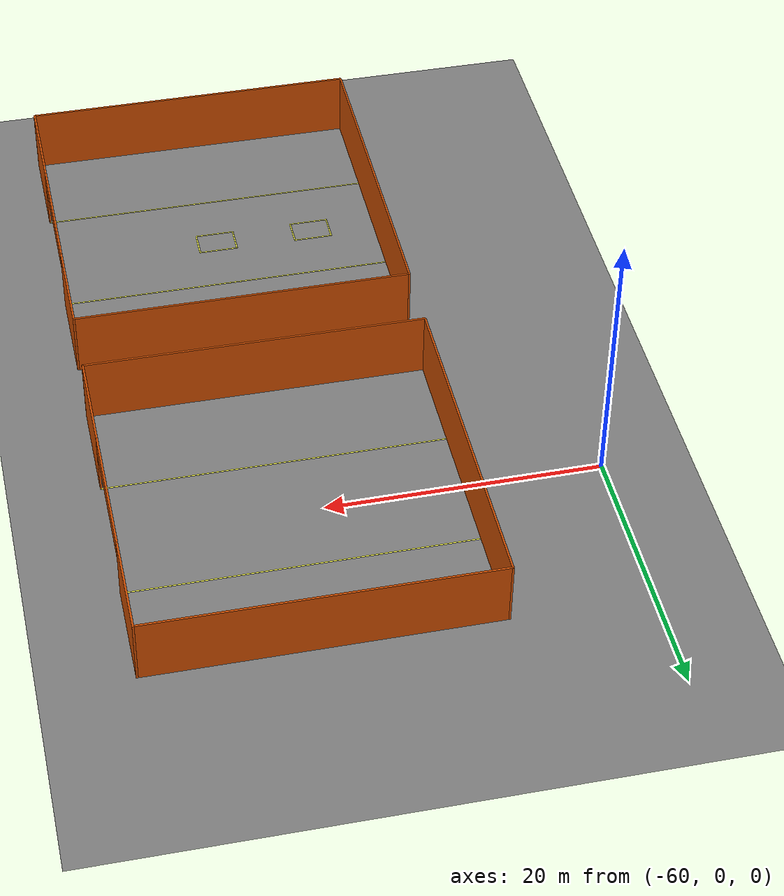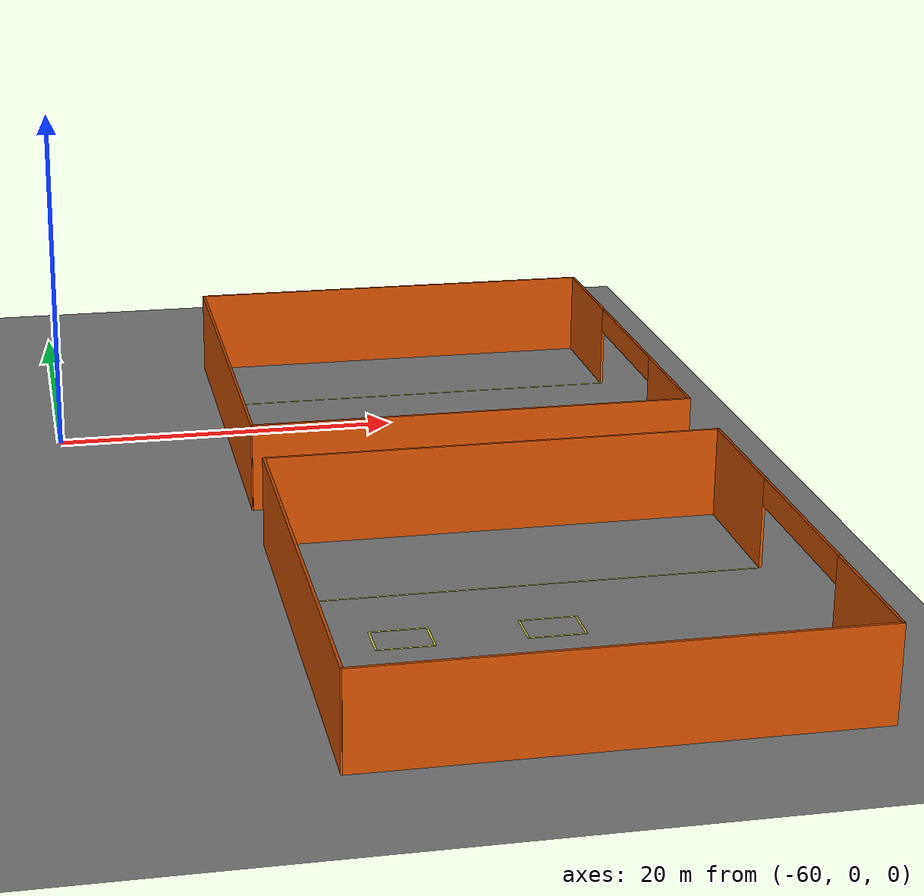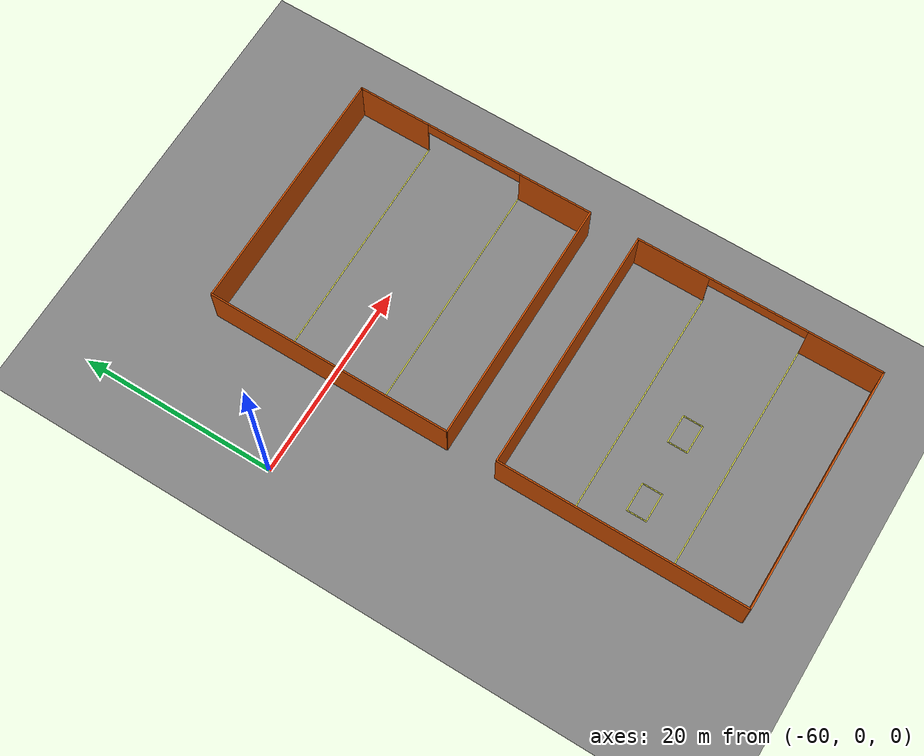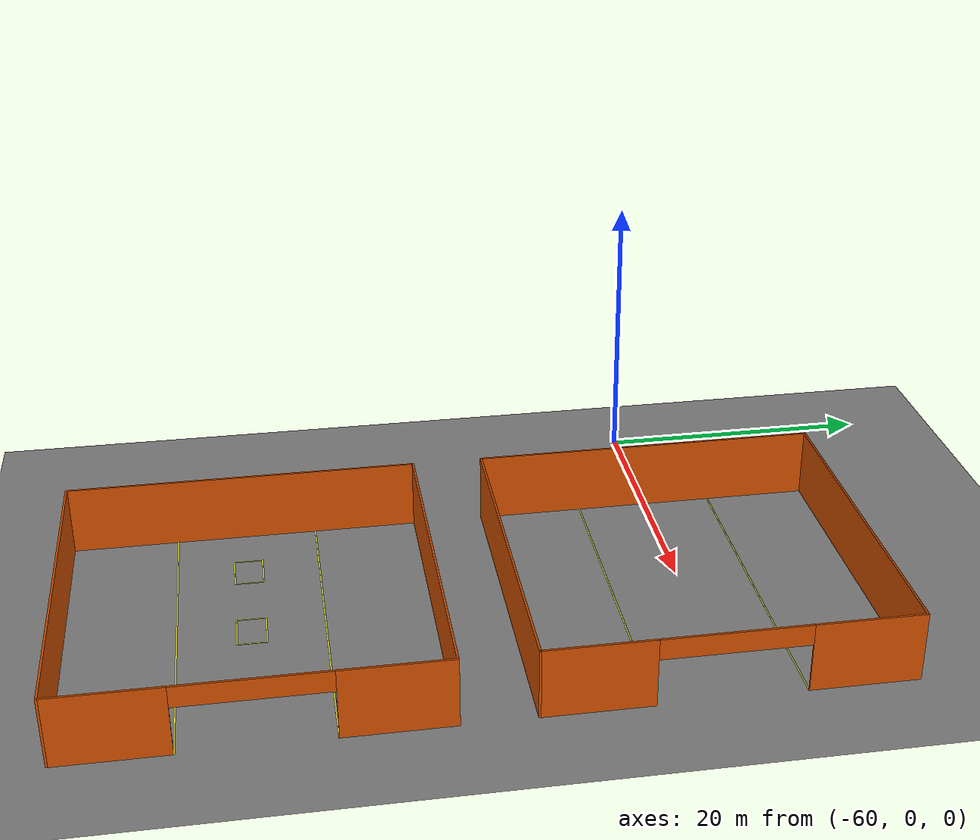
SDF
<sdf version="1.7">
 <world name="scenario_3">
  <model name="ground_plane">
   <static>true</static>
   <link name="link">
    <collision name="collision"><geometry><plane><normal>0 0 1</normal></plane></geometry></collision>
    <visual name="visual">
     <geometry><plane><normal>0 0 1</normal><size>200 200</size></plane></geometry>
     <material>
      <ambient>0.5 0.5 0.5 1</ambient>
      <diffuse>0.5 0.5 0.5 1</diffuse>
      <specular>0.5 0.5 0.5 1</specular>
     </material>
    </visual>
   </link>
  </model>
  <model name="warehouse_2">
   <pose relative_to="world">-37.5 0 0 0 0 0</pose>
   <link name="Wall_1">
    <pose>0 12.4246 0 0 0 0</pose>
    <visual name="Wall_1_Visual">
     <pose>0 0 2.5 0 -0 0</pose>
     <geometry><box><size>25 0.15 5</size></box></geometry>
     <material>
      <ambient>0.8 0.3 0.0 1</ambient>
      <diffuse>0.8 0.3 0.0 1</diffuse>
      <specular>0.8 0.3 0.0 1</specular>
     </material>
    </visual>
    <collision name="Wall_1_Collision"><geometry><box><size>25 0.15 5</size></box></geometry></collision>
   </link>
   <link name="Wall_2">
    <pose>12.425 0 0 0 0 -1.5708</pose>
    <visual name="Wall_2_Visual_0">
     <pose>-8.75 0 2.5 0 0 0</pose>
     <geometry><box><size>7.5 0.15 5</size></box></geometry>
     <material>
      <ambient>0.8 0.3 0.0 1</ambient>
      <diffuse>0.8 0.3 0.0 1</diffuse>
      <specular>0.8 0.3 0.0 1</specular>
     </material>
    </visual>
    <visual name="Wall_2_Visual_1">
     <pose>8.75 0 2.5 0 0 0</pose>
     <geometry><box><size>7.5 0.15 5</size></box></geometry>
     <material>
      <ambient>0.8 0.3 0.0 1</ambient>
      <diffuse>0.8 0.3 0.0 1</diffuse>
      <specular>0.8 0.3 0.0 1</specular>
     </material>
    </visual>
    <visual name="Wall_2_Visual_2">
     <pose>0 0 4.25 0 0 0</pose>
     <geometry><box><size>10 0.15 1.5</size></box></geometry>
     <material>
      <ambient>0.8 0.3 0.0 1</ambient>
      <diffuse>0.8 0.3 0.0 1</diffuse>
      <specular>0.8 0.3 0.0 1</specular>
     </material>
    </visual>
    <collision name="Wall_2_Collision_0">
     <pose>-8.75 0 2.5 0 0 0</pose>
     <geometry><box><size>7.5 0.15 5</size></box></geometry>
    </collision>
    <collision name="Wall_2_Collision_1">
     <pose>8.75 0 2.5 0 0 0</pose>
     <geometry><box><size>7.5 0.15 5</size></box></geometry>
    </collision>
    <collision name="Wall_2_Collision_2">
     <pose>0 0 4.25 0 0 0</pose>
     <geometry><box><size>10 0.15 1.5</size></box></geometry>
    </collision>
   </link>
   <link name="Wall_3">
    <pose>-12.5 0 0 0 0 -1.5708</pose>
    <visual name="Wall_3_Visual">
     <pose>0 0 2.5 0 0 0</pose>
     <geometry><box><size>25 0.15 5</size></box></geometry>
     <material>
      <ambient>0.8 0.3 0.0 1</ambient>
      <diffuse>0.8 0.3 0.0 1</diffuse>
      <specular>0.8 0.3 0.0 1</specular>
     </material>
    </visual>
    <collision name="Wall_3_Collision"><geometry><box><size>25 0.15 5</size></box></geometry></collision>
   </link>
   <link name="Wall_4">
    <pose>0 -12.5 0 0 0 0</pose>
    <visual name="Wall_4_Visual">
     <pose>0 0 2.5 0 0 0</pose>
     <geometry><box><size>25 0.15 5</size></box></geometry>
     <material>
      <ambient>0.8 0.3 0.0 1</ambient>
      <diffuse>0.8 0.3 0.0 1</diffuse>
      <specular>0.8 0.3 0.0 1</specular>
     </material>
    </visual>
    <collision name="Wall_4_Collision"><geometry><box><size>25 0.15 5</size></box></geometry></collision>
   </link>
   <link name="line_1">
    <pose relative_to="__model__">0 5 0 0 0 0</pose>
    <visual name="visual">
     <geometry><box><size>25 0.1 0.001</size></box></geometry>
     <material>
      <ambient>1.0 1.0 0.3 1</ambient>
      <diffuse>1.0 1.0 0.3 1</diffuse>
      <specular>1.0 1.0 0.3 1</specular>
     </material>
    </visual>
    <collision name="collision"><geometry><box><size>25 0.1 0.001</size></box></geometry></collision>
   </link>
   <link name="line_2">
    <pose relative_to="__model__">0 -5 0 0 0 0</pose>
    <visual name="visual">
     <geometry><box><size>25 0.1 0.001</size></box></geometry>
     <material>
      <ambient>1.0 1.0 0.3 1</ambient>
      <diffuse>1.0 1.0 0.3 1</diffuse>
      <specular>1.0 1.0 0.3 1</specular>
     </material>
    </visual>
    <collision name="collision"><geometry><box><size>25 0.1 0.001</size></box></geometry></collision>
   </link>
  </model>
  <model name="warehouse_3">
   <pose relative_to="world">-37.5 -30 0 0 0 0</pose>
   <link name="Wall_1">
    <pose>0 12.4246 0 0 0 0</pose>
    <visual name="Wall_1_Visual">
     <pose>0 0 2.5 0 -0 0</pose>
     <geometry><box><size>25 0.15 5</size></box></geometry>
     <material>
      <ambient>0.8 0.3 0.0 1</ambient>
      <diffuse>0.8 0.3 0.0 1</diffuse>
      <specular>0.8 0.3 0.0 1</specular>
     </material>
    </visual>
    <collision name="Wall_1_Collision"><geometry><box><size>25 0.15 5</size></box></geometry></collision>
   </link>
   <link name="Wall_2">
    <pose>12.425 0 0 0 0 -1.5708</pose>
    <visual name="Wall_2_Visual_0">
     <pose>-8.75 0 2.5 0 0 0</pose>
     <geometry><box><size>7.5 0.15 5</size></box></geometry>
     <material>
      <ambient>0.8 0.3 0.0 1</ambient>
      <diffuse>0.8 0.3 0.0 1</diffuse>
      <specular>0.8 0.3 0.0 1</specular>
     </material>
    </visual>
    <visual name="Wall_2_Visual_1">
     <pose>8.75 0 2.5 0 0 0</pose>
     <geometry><box><size>7.5 0.15 5</size></box></geometry>
     <material>
      <ambient>0.8 0.3 0.0 1</ambient>
      <diffuse>0.8 0.3 0.0 1</diffuse>
      <specular>0.8 0.3 0.0 1</specular>
     </material>
    </visual>
    <visual name="Wall_2_Visual_2">
     <pose>0 0 4.25 0 0 0</pose>
     <geometry><box><size>10 0.15 1.5</size></box></geometry>
     <material>
      <ambient>0.8 0.3 0.0 1</ambient>
      <diffuse>0.8 0.3 0.0 1</diffuse>
      <specular>0.8 0.3 0.0 1</specular>
     </material>
    </visual>
    <collision name="Wall_2_Collision_0">
     <pose>-8.75 0 2.5 0 0 0</pose>
     <geometry><box><size>7.5 0.15 5</size></box></geometry>
    </collision>
    <collision name="Wall_2_Collision_1">
     <pose>8.75 0 2.5 0 0 0</pose>
     <geometry><box><size>7.5 0.15 5</size></box></geometry>
    </collision>
    <collision name="Wall_2_Collision_2">
     <pose>0 0 4.25 0 0 0</pose>
     <geometry><box><size>10 0.15 1.5</size></box></geometry>
    </collision>
   </link>
   <link name="Wall_3">
    <pose>-12.5 0 0 0 0 -1.5708</pose>
    <visual name="Wall_3_Visual">
     <pose>0 0 2.5 0 0 0</pose>
     <geometry><box><size>25 0.15 5</size></box></geometry>
     <material>
      <ambient>0.8 0.3 0.0 1</ambient>
      <diffuse>0.8 0.3 0.0 1</diffuse>
      <specular>0.8 0.3 0.0 1</specular>
     </material>
    </visual>
    <collision name="Wall_3_Collision"><geometry><box><size>25 0.15 5</size></box></geometry></collision>
   </link>
   <link name="Wall_4">
    <pose>0 -12.5 0 0 0 0</pose>
    <visual name="Wall_4_Visual">
     <pose>0 0 2.5 0 0 0</pose>
     <geometry><box><size>25 0.15 5</size></box></geometry>
     <material>
      <ambient>0.8 0.3 0.0 1</ambient>
      <diffuse>0.8 0.3 0.0 1</diffuse>
      <specular>0.8 0.3 0.0 1</specular>
     </material>
    </visual>
    <collision name="Wall_4_Collision"><geometry><box><size>25 0.15 5</size></box></geometry></collision>
   </link>
   <link name="line_1">
    <pose relative_to="__model__">0 5 0 0 0 0</pose>
    <visual name="visual">
     <geometry><box><size>25 0.1 0.001</size></box></geometry>
     <material>
      <ambient>1.0 1.0 0.3 1</ambient>
      <diffuse>1.0 1.0 0.3 1</diffuse>
      <specular>1.0 1.0 0.3 1</specular>
     </material>
    </visual>
    <collision name="collision"><geometry><box><size>25 0.1 0.001</size></box></geometry></collision>
   </link>
   <link name="line_2">
    <pose relative_to="__model__">0 -5 0 0 0 0</pose>
    <visual name="visual">
     <geometry><box><size>25 0.1 0.001</size></box></geometry>
     <material>
      <ambient>1.0 1.0 0.3 1</ambient>
      <diffuse>1.0 1.0 0.3 1</diffuse>
      <specular>1.0 1.0 0.3 1</specular>
     </material>
    </visual>
    <collision name="collision"><geometry><box><size>25 0.1 0.001</size></box></geometry></collision>
   </link>
  </model>
  <model name="agv_park_6">
   <pose relative_to="world">-45 -30 0 0 0 0</pose>
   <link name="strip_1">
    <pose relative_to="__model__">0 1 0 0 0 0</pose>
    <visual name="visual">
     <geometry><box><size>3 0.1 0.001</size></box></geometry>
     <material>
      <ambient>1.0 1.0 0.3 1</ambient>
      <diffuse>1.0 1.0 0.3 1</diffuse>
      <specular>1.0 1.0 0.3 1</specular>
     </material>
    </visual>
    <collision name="collision"><geometry><box><size>3 0.1 0.001</size></box></geometry></collision>
   </link>
   <link name="strip_2">
    <pose relative_to="__model__">0 -1 0 0 0 0</pose>
    <visual name="visual">
     <geometry><box><size>3 0.1 0.001</size></box></geometry>
     <material>
      <ambient>1.0 1.0 0.3 1</ambient>
      <diffuse>1.0 1.0 0.3 1</diffuse>
      <specular>1.0 1.0 0.3 1</specular>
     </material>
    </visual>
    <collision name="collision"><geometry><box><size>3 0.1 0.001</size></box></geometry></collision>
   </link>
   <link name="strip_3">
    <pose relative_to="__model__">-1.45 0 0 0 0 0</pose>
    <visual name="visual">
     <geometry><box><size>0.1 1.9 0.001</size></box></geometry>
     <material>
      <ambient>1.0 1.0 0.3 1</ambient>
      <diffuse>1.0 1.0 0.3 1</diffuse>
      <specular>1.0 1.0 0.3 1</specular>
     </material>
    </visual>
    <collision name="collision"><geometry><box><size>0.1 1.9 0.001</size></box></geometry></collision>
   </link>
   <link name="strip_4">
    <pose relative_to="__model__">1.45 0 0 0 0 0</pose>
    <visual name="visual">
     <geometry><box><size>0.1 1.9 0.001</size></box></geometry>
     <material>
      <ambient>1.0 1.0 0.3 1</ambient>
      <diffuse>1.0 1.0 0.3 1</diffuse>
      <specular>1.0 1.0 0.3 1</specular>
     </material>
    </visual>
    <collision name="collision"><geometry><box><size>00.1 1.9 0.001</size></box></geometry></collision>
   </link>
  </model>
  <model name="agv_park_7">
   <pose relative_to="world">-37.5 -30 0 0 0 0</pose>
   <link name="strip_1">
    <pose relative_to="__model__">0 1 0 0 0 0</pose>
    <visual name="visual">
     <geometry><box><size>3 0.1 0.001</size></box></geometry>
     <material>
      <ambient>1.0 1.0 0.3 1</ambient>
      <diffuse>1.0 1.0 0.3 1</diffuse>
      <specular>1.0 1.0 0.3 1</specular>
     </material>
    </visual>
    <collision name="collision"><geometry><box><size>3 0.1 0.001</size></box></geometry></collision>
   </link>
   <link name="strip_2">
    <pose relative_to="__model__">0 -1 0 0 0 0</pose>
    <visual name="visual">
     <geometry><box><size>3 0.1 0.001</size></box></geometry>
     <material>
      <ambient>1.0 1.0 0.3 1</ambient>
      <diffuse>1.0 1.0 0.3 1</diffuse>
      <specular>1.0 1.0 0.3 1</specular>
     </material>
    </visual>
    <collision name="collision"><geometry><box><size>3 0.1 0.001</size></box></geometry></collision>
   </link>
   <link name="strip_3">
    <pose relative_to="__model__">-1.45 0 0 0 0 0</pose>
    <visual name="visual">
     <geometry><box><size>0.1 1.9 0.001</size></box></geometry>
     <material>
      <ambient>1.0 1.0 0.3 1</ambient>
      <diffuse>1.0 1.0 0.3 1</diffuse>
      <specular>1.0 1.0 0.3 1</specular>
     </material>
    </visual>
    <collision name="collision"><geometry><box><size>0.1 1.9 0.001</size></box></geometry></collision>
   </link>
   <link name="strip_4">
    <pose relative_to="__model__">1.45 0 0 0 0 0</pose>
    <visual name="visual">
     <geometry><box><size>0.1 1.9 0.001</size></box></geometry>
     <material>
      <ambient>1.0 1.0 0.3 1</ambient>
      <diffuse>1.0 1.0 0.3 1</diffuse>
      <specular>1.0 1.0 0.3 1</specular>
     </material>
    </visual>
    <collision name="collision"><geometry><box><size>00.1 1.9 0.001</size></box></geometry></collision>
   </link>
  </model>
 </world>
</sdf>
